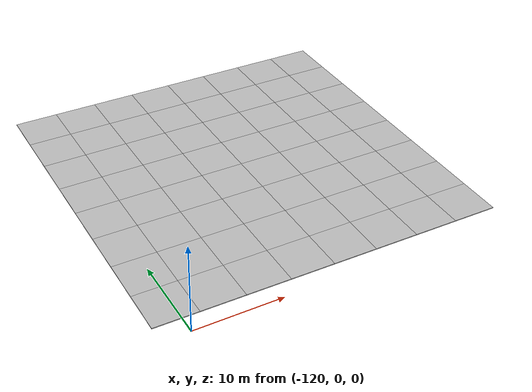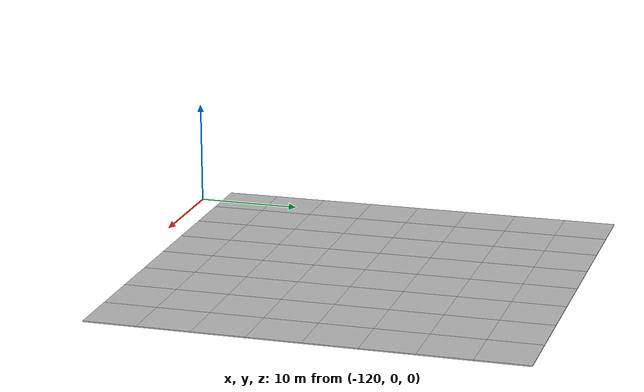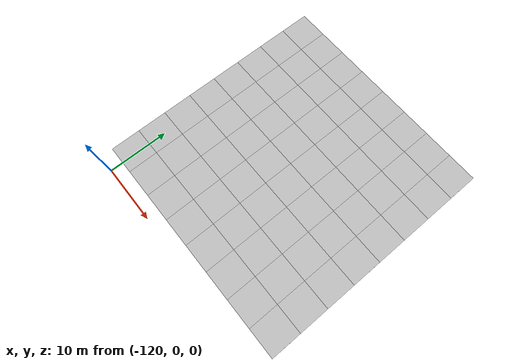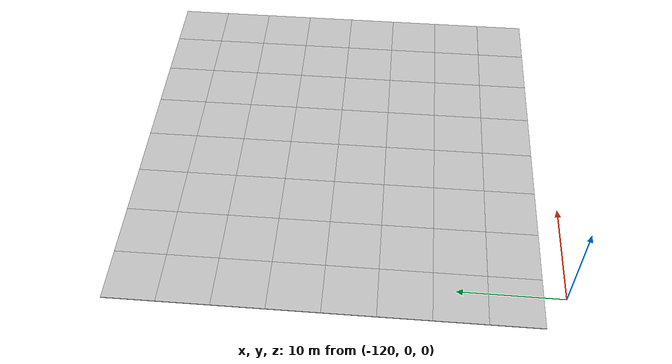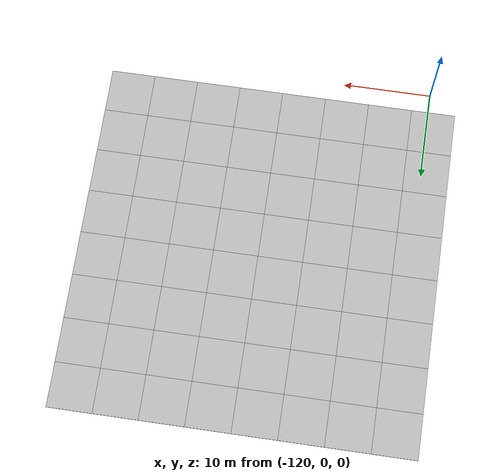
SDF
<sdf version="1.7">
 <world name="default">
  <model name="mud_plane_80x80_3">
   <model name="mud_plane_40x40_0">
    <model name="mud_plane_20x20">
     <model name="mud_plane">
      <static>1</static>
      <link name="link">
       <collision name="collision"><geometry><box><size>10 10 0.1</size></box></geometry></collision>
       <visual name="visual_1">
        <pose>-2.5 2.5 -0.05 0 -0 0</pose>
        <cast_shadows>0</cast_shadows>
        <geometry><box><size>5 5 0.1</size></box></geometry>
        <material>
         <script>
          <uri>model://mud_plane/materials/scripts</uri>
          <uri>model://mud_plane/materials/textures</uri>
          <name>vrc/mud</name>
         </script>
        </material>
       </visual>
       <visual name="visual_2">
        <pose>2.5 2.5 -0.05 0 -0 0</pose>
        <cast_shadows>0</cast_shadows>
        <geometry><box><size>5 5 0.1</size></box></geometry>
        <material>
         <script>
          <uri>model://mud_plane/materials/scripts</uri>
          <uri>model://mud_plane/materials/textures</uri>
          <name>vrc/mud</name>
         </script>
        </material>
       </visual>
       <visual name="visual_3">
        <pose>2.5 -2.5 -0.05 0 -0 0</pose>
        <cast_shadows>0</cast_shadows>
        <geometry><box><size>5 5 0.1</size></box></geometry>
        <material>
         <script>
          <uri>model://mud_plane/materials/scripts</uri>
          <uri>model://mud_plane/materials/textures</uri>
          <name>vrc/mud</name>
         </script>
        </material>
       </visual>
       <visual name="visual_4">
        <pose>-2.5 -2.5 -0.05 0 -0 0</pose>
        <cast_shadows>0</cast_shadows>
        <geometry><box><size>5 5 0.1</size></box></geometry>
        <material>
         <script>
          <uri>model://mud_plane/materials/scripts</uri>
          <uri>model://mud_plane/materials/textures</uri>
          <name>vrc/mud</name>
         </script>
        </material>
       </visual>
      </link>
      <pose>-4.99986 -4.99991 0 0 -0 0</pose>
     </model>
     <model name="mud_plane_0">
      <static>1</static>
      <link name="link">
       <collision name="collision"><geometry><box><size>10 10 0.1</size></box></geometry></collision>
       <visual name="visual_1">
        <pose>-2.5 2.5 -0.05 0 -0 0</pose>
        <cast_shadows>0</cast_shadows>
        <geometry><box><size>5 5 0.1</size></box></geometry>
        <material>
         <script>
          <uri>model://mud_plane/materials/scripts</uri>
          <uri>model://mud_plane/materials/textures</uri>
          <name>vrc/mud</name>
         </script>
        </material>
       </visual>
       <visual name="visual_2">
        <pose>2.5 2.5 -0.05 0 -0 0</pose>
        <cast_shadows>0</cast_shadows>
        <geometry><box><size>5 5 0.1</size></box></geometry>
        <material>
         <script>
          <uri>model://mud_plane/materials/scripts</uri>
          <uri>model://mud_plane/materials/textures</uri>
          <name>vrc/mud</name>
         </script>
        </material>
       </visual>
       <visual name="visual_3">
        <pose>2.5 -2.5 -0.05 0 -0 0</pose>
        <cast_shadows>0</cast_shadows>
        <geometry><box><size>5 5 0.1</size></box></geometry>
        <material>
         <script>
          <uri>model://mud_plane/materials/scripts</uri>
          <uri>model://mud_plane/materials/textures</uri>
          <name>vrc/mud</name>
         </script>
        </material>
       </visual>
       <visual name="visual_4">
        <pose>-2.5 -2.5 -0.05 0 -0 0</pose>
        <cast_shadows>0</cast_shadows>
        <geometry><box><size>5 5 0.1</size></box></geometry>
        <material>
         <script>
          <uri>model://mud_plane/materials/scripts</uri>
          <uri>model://mud_plane/materials/textures</uri>
          <name>vrc/mud</name>
         </script>
        </material>
       </visual>
      </link>
      <pose>-4.99946 4.99954 0 0 -0 0</pose>
     </model>
     <model name="mud_plane_1">
      <static>1</static>
      <link name="link">
       <collision name="collision"><geometry><box><size>10 10 0.1</size></box></geometry></collision>
       <visual name="visual_1">
        <pose>-2.5 2.5 -0.05 0 -0 0</pose>
        <cast_shadows>0</cast_shadows>
        <geometry><box><size>5 5 0.1</size></box></geometry>
        <material>
         <script>
          <uri>model://mud_plane/materials/scripts</uri>
          <uri>model://mud_plane/materials/textures</uri>
          <name>vrc/mud</name>
         </script>
        </material>
       </visual>
       <visual name="visual_2">
        <pose>2.5 2.5 -0.05 0 -0 0</pose>
        <cast_shadows>0</cast_shadows>
        <geometry><box><size>5 5 0.1</size></box></geometry>
        <material>
         <script>
          <uri>model://mud_plane/materials/scripts</uri>
          <uri>model://mud_plane/materials/textures</uri>
          <name>vrc/mud</name>
         </script>
        </material>
       </visual>
       <visual name="visual_3">
        <pose>2.5 -2.5 -0.05 0 -0 0</pose>
        <cast_shadows>0</cast_shadows>
        <geometry><box><size>5 5 0.1</size></box></geometry>
        <material>
         <script>
          <uri>model://mud_plane/materials/scripts</uri>
          <uri>model://mud_plane/materials/textures</uri>
          <name>vrc/mud</name>
         </script>
        </material>
       </visual>
       <visual name="visual_4">
        <pose>-2.5 -2.5 -0.05 0 -0 0</pose>
        <cast_shadows>0</cast_shadows>
        <geometry><box><size>5 5 0.1</size></box></geometry>
        <material>
         <script>
          <uri>model://mud_plane/materials/scripts</uri>
          <uri>model://mud_plane/materials/textures</uri>
          <name>vrc/mud</name>
         </script>
        </material>
       </visual>
      </link>
      <pose>4.99964 -4.99949 0 0 -0 0</pose>
     </model>
     <model name="mud_plane_2">
      <static>1</static>
      <link name="link">
       <collision name="collision"><geometry><box><size>10 10 0.1</size></box></geometry></collision>
       <visual name="visual_1">
        <pose>-2.5 2.5 -0.05 0 -0 0</pose>
        <cast_shadows>0</cast_shadows>
        <geometry><box><size>5 5 0.1</size></box></geometry>
        <material>
         <script>
          <uri>model://mud_plane/materials/scripts</uri>
          <uri>model://mud_plane/materials/textures</uri>
          <name>vrc/mud</name>
         </script>
        </material>
       </visual>
       <visual name="visual_2">
        <pose>2.5 2.5 -0.05 0 -0 0</pose>
        <cast_shadows>0</cast_shadows>
        <geometry><box><size>5 5 0.1</size></box></geometry>
        <material>
         <script>
          <uri>model://mud_plane/materials/scripts</uri>
          <uri>model://mud_plane/materials/textures</uri>
          <name>vrc/mud</name>
         </script>
        </material>
       </visual>
       <visual name="visual_3">
        <pose>2.5 -2.5 -0.05 0 -0 0</pose>
        <cast_shadows>0</cast_shadows>
        <geometry><box><size>5 5 0.1</size></box></geometry>
        <material>
         <script>
          <uri>model://mud_plane/materials/scripts</uri>
          <uri>model://mud_plane/materials/textures</uri>
          <name>vrc/mud</name>
         </script>
        </material>
       </visual>
       <visual name="visual_4">
        <pose>-2.5 -2.5 -0.05 0 -0 0</pose>
        <cast_shadows>0</cast_shadows>
        <geometry><box><size>5 5 0.1</size></box></geometry>
        <material>
         <script>
          <uri>model://mud_plane/materials/scripts</uri>
          <uri>model://mud_plane/materials/textures</uri>
          <name>vrc/mud</name>
         </script>
        </material>
       </visual>
      </link>
      <pose>4.99967 4.99986 0 0 -0 0</pose>
     </model>
     <static>0</static>
     <pose>-9.99895 9.99843 0 0 -0 0</pose>
    </model>
    <model name="mud_plane_20x20_0">
     <model name="mud_plane">
      <static>1</static>
      <link name="link">
       <collision name="collision"><geometry><box><size>10 10 0.1</size></box></geometry></collision>
       <visual name="visual_1">
        <pose>-2.5 2.5 -0.05 0 -0 0</pose>
        <cast_shadows>0</cast_shadows>
        <geometry><box><size>5 5 0.1</size></box></geometry>
        <material>
         <script>
          <uri>model://mud_plane/materials/scripts</uri>
          <uri>model://mud_plane/materials/textures</uri>
          <name>vrc/mud</name>
         </script>
        </material>
       </visual>
       <visual name="visual_2">
        <pose>2.5 2.5 -0.05 0 -0 0</pose>
        <cast_shadows>0</cast_shadows>
        <geometry><box><size>5 5 0.1</size></box></geometry>
        <material>
         <script>
          <uri>model://mud_plane/materials/scripts</uri>
          <uri>model://mud_plane/materials/textures</uri>
          <name>vrc/mud</name>
         </script>
        </material>
       </visual>
       <visual name="visual_3">
        <pose>2.5 -2.5 -0.05 0 -0 0</pose>
        <cast_shadows>0</cast_shadows>
        <geometry><box><size>5 5 0.1</size></box></geometry>
        <material>
         <script>
          <uri>model://mud_plane/materials/scripts</uri>
          <uri>model://mud_plane/materials/textures</uri>
          <name>vrc/mud</name>
         </script>
        </material>
       </visual>
       <visual name="visual_4">
        <pose>-2.5 -2.5 -0.05 0 -0 0</pose>
        <cast_shadows>0</cast_shadows>
        <geometry><box><size>5 5 0.1</size></box></geometry>
        <material>
         <script>
          <uri>model://mud_plane/materials/scripts</uri>
          <uri>model://mud_plane/materials/textures</uri>
          <name>vrc/mud</name>
         </script>
        </material>
       </visual>
      </link>
      <pose>-4.99986 -4.99991 0 0 -0 0</pose>
     </model>
     <model name="mud_plane_0">
      <static>1</static>
      <link name="link">
       <collision name="collision"><geometry><box><size>10 10 0.1</size></box></geometry></collision>
       <visual name="visual_1">
        <pose>-2.5 2.5 -0.05 0 -0 0</pose>
        <cast_shadows>0</cast_shadows>
        <geometry><box><size>5 5 0.1</size></box></geometry>
        <material>
         <script>
          <uri>model://mud_plane/materials/scripts</uri>
          <uri>model://mud_plane/materials/textures</uri>
          <name>vrc/mud</name>
         </script>
        </material>
       </visual>
       <visual name="visual_2">
        <pose>2.5 2.5 -0.05 0 -0 0</pose>
        <cast_shadows>0</cast_shadows>
        <geometry><box><size>5 5 0.1</size></box></geometry>
        <material>
         <script>
          <uri>model://mud_plane/materials/scripts</uri>
          <uri>model://mud_plane/materials/textures</uri>
          <name>vrc/mud</name>
         </script>
        </material>
       </visual>
       <visual name="visual_3">
        <pose>2.5 -2.5 -0.05 0 -0 0</pose>
        <cast_shadows>0</cast_shadows>
        <geometry><box><size>5 5 0.1</size></box></geometry>
        <material>
         <script>
          <uri>model://mud_plane/materials/scripts</uri>
          <uri>model://mud_plane/materials/textures</uri>
          <name>vrc/mud</name>
         </script>
        </material>
       </visual>
       <visual name="visual_4">
        <pose>-2.5 -2.5 -0.05 0 -0 0</pose>
        <cast_shadows>0</cast_shadows>
        <geometry><box><size>5 5 0.1</size></box></geometry>
        <material>
         <script>
          <uri>model://mud_plane/materials/scripts</uri>
          <uri>model://mud_plane/materials/textures</uri>
          <name>vrc/mud</name>
         </script>
        </material>
       </visual>
      </link>
      <pose>-4.99946 4.99954 0 0 -0 0</pose>
     </model>
     <model name="mud_plane_1">
      <static>1</static>
      <link name="link">
       <collision name="collision"><geometry><box><size>10 10 0.1</size></box></geometry></collision>
       <visual name="visual_1">
        <pose>-2.5 2.5 -0.05 0 -0 0</pose>
        <cast_shadows>0</cast_shadows>
        <geometry><box><size>5 5 0.1</size></box></geometry>
        <material>
         <script>
          <uri>model://mud_plane/materials/scripts</uri>
          <uri>model://mud_plane/materials/textures</uri>
          <name>vrc/mud</name>
         </script>
        </material>
       </visual>
       <visual name="visual_2">
        <pose>2.5 2.5 -0.05 0 -0 0</pose>
        <cast_shadows>0</cast_shadows>
        <geometry><box><size>5 5 0.1</size></box></geometry>
        <material>
         <script>
          <uri>model://mud_plane/materials/scripts</uri>
          <uri>model://mud_plane/materials/textures</uri>
          <name>vrc/mud</name>
         </script>
        </material>
       </visual>
       <visual name="visual_3">
        <pose>2.5 -2.5 -0.05 0 -0 0</pose>
        <cast_shadows>0</cast_shadows>
        <geometry><box><size>5 5 0.1</size></box></geometry>
        <material>
         <script>
          <uri>model://mud_plane/materials/scripts</uri>
          <uri>model://mud_plane/materials/textures</uri>
          <name>vrc/mud</name>
         </script>
        </material>
       </visual>
       <visual name="visual_4">
        <pose>-2.5 -2.5 -0.05 0 -0 0</pose>
        <cast_shadows>0</cast_shadows>
        <geometry><box><size>5 5 0.1</size></box></geometry>
        <material>
         <script>
          <uri>model://mud_plane/materials/scripts</uri>
          <uri>model://mud_plane/materials/textures</uri>
          <name>vrc/mud</name>
         </script>
        </material>
       </visual>
      </link>
      <pose>4.99964 -4.99949 0 0 -0 0</pose>
     </model>
     <model name="mud_plane_2">
      <static>1</static>
      <link name="link">
       <collision name="collision"><geometry><box><size>10 10 0.1</size></box></geometry></collision>
       <visual name="visual_1">
        <pose>-2.5 2.5 -0.05 0 -0 0</pose>
        <cast_shadows>0</cast_shadows>
        <geometry><box><size>5 5 0.1</size></box></geometry>
        <material>
         <script>
          <uri>model://mud_plane/materials/scripts</uri>
          <uri>model://mud_plane/materials/textures</uri>
          <name>vrc/mud</name>
         </script>
        </material>
       </visual>
       <visual name="visual_2">
        <pose>2.5 2.5 -0.05 0 -0 0</pose>
        <cast_shadows>0</cast_shadows>
        <geometry><box><size>5 5 0.1</size></box></geometry>
        <material>
         <script>
          <uri>model://mud_plane/materials/scripts</uri>
          <uri>model://mud_plane/materials/textures</uri>
          <name>vrc/mud</name>
         </script>
        </material>
       </visual>
       <visual name="visual_3">
        <pose>2.5 -2.5 -0.05 0 -0 0</pose>
        <cast_shadows>0</cast_shadows>
        <geometry><box><size>5 5 0.1</size></box></geometry>
        <material>
         <script>
          <uri>model://mud_plane/materials/scripts</uri>
          <uri>model://mud_plane/materials/textures</uri>
          <name>vrc/mud</name>
         </script>
        </material>
       </visual>
       <visual name="visual_4">
        <pose>-2.5 -2.5 -0.05 0 -0 0</pose>
        <cast_shadows>0</cast_shadows>
        <geometry><box><size>5 5 0.1</size></box></geometry>
        <material>
         <script>
          <uri>model://mud_plane/materials/scripts</uri>
          <uri>model://mud_plane/materials/textures</uri>
          <name>vrc/mud</name>
         </script>
        </material>
       </visual>
      </link>
      <pose>4.99967 4.99986 0 0 -0 0</pose>
     </model>
     <static>0</static>
     <pose>9.99933 9.9997 0 0 -0 0</pose>
    </model>
    <model name="mud_plane_20x20_1">
     <model name="mud_plane">
      <static>1</static>
      <link name="link">
       <collision name="collision"><geometry><box><size>10 10 0.1</size></box></geometry></collision>
       <visual name="visual_1">
        <pose>-2.5 2.5 -0.05 0 -0 0</pose>
        <cast_shadows>0</cast_shadows>
        <geometry><box><size>5 5 0.1</size></box></geometry>
        <material>
         <script>
          <uri>model://mud_plane/materials/scripts</uri>
          <uri>model://mud_plane/materials/textures</uri>
          <name>vrc/mud</name>
         </script>
        </material>
       </visual>
       <visual name="visual_2">
        <pose>2.5 2.5 -0.05 0 -0 0</pose>
        <cast_shadows>0</cast_shadows>
        <geometry><box><size>5 5 0.1</size></box></geometry>
        <material>
         <script>
          <uri>model://mud_plane/materials/scripts</uri>
          <uri>model://mud_plane/materials/textures</uri>
          <name>vrc/mud</name>
         </script>
        </material>
       </visual>
       <visual name="visual_3">
        <pose>2.5 -2.5 -0.05 0 -0 0</pose>
        <cast_shadows>0</cast_shadows>
        <geometry><box><size>5 5 0.1</size></box></geometry>
        <material>
         <script>
          <uri>model://mud_plane/materials/scripts</uri>
          <uri>model://mud_plane/materials/textures</uri>
          <name>vrc/mud</name>
         </script>
        </material>
       </visual>
       <visual name="visual_4">
        <pose>-2.5 -2.5 -0.05 0 -0 0</pose>
        <cast_shadows>0</cast_shadows>
        <geometry><box><size>5 5 0.1</size></box></geometry>
        <material>
         <script>
          <uri>model://mud_plane/materials/scripts</uri>
          <uri>model://mud_plane/materials/textures</uri>
          <name>vrc/mud</name>
         </script>
        </material>
       </visual>
      </link>
      <pose>-4.99986 -4.99991 0 0 -0 0</pose>
     </model>
     <model name="mud_plane_0">
      <static>1</static>
      <link name="link">
       <collision name="collision"><geometry><box><size>10 10 0.1</size></box></geometry></collision>
       <visual name="visual_1">
        <pose>-2.5 2.5 -0.05 0 -0 0</pose>
        <cast_shadows>0</cast_shadows>
        <geometry><box><size>5 5 0.1</size></box></geometry>
        <material>
         <script>
          <uri>model://mud_plane/materials/scripts</uri>
          <uri>model://mud_plane/materials/textures</uri>
          <name>vrc/mud</name>
         </script>
        </material>
       </visual>
       <visual name="visual_2">
        <pose>2.5 2.5 -0.05 0 -0 0</pose>
        <cast_shadows>0</cast_shadows>
        <geometry><box><size>5 5 0.1</size></box></geometry>
        <material>
         <script>
          <uri>model://mud_plane/materials/scripts</uri>
          <uri>model://mud_plane/materials/textures</uri>
          <name>vrc/mud</name>
         </script>
        </material>
       </visual>
       <visual name="visual_3">
        <pose>2.5 -2.5 -0.05 0 -0 0</pose>
        <cast_shadows>0</cast_shadows>
        <geometry><box><size>5 5 0.1</size></box></geometry>
        <material>
         <script>
          <uri>model://mud_plane/materials/scripts</uri>
          <uri>model://mud_plane/materials/textures</uri>
          <name>vrc/mud</name>
         </script>
        </material>
       </visual>
       <visual name="visual_4">
        <pose>-2.5 -2.5 -0.05 0 -0 0</pose>
        <cast_shadows>0</cast_shadows>
        <geometry><box><size>5 5 0.1</size></box></geometry>
        <material>
         <script>
          <uri>model://mud_plane/materials/scripts</uri>
          <uri>model://mud_plane/materials/textures</uri>
          <name>vrc/mud</name>
         </script>
        </material>
       </visual>
      </link>
      <pose>-4.99946 4.99954 0 0 -0 0</pose>
     </model>
     <model name="mud_plane_1">
      <static>1</static>
      <link name="link">
       <collision name="collision"><geometry><box><size>10 10 0.1</size></box></geometry></collision>
       <visual name="visual_1">
        <pose>-2.5 2.5 -0.05 0 -0 0</pose>
        <cast_shadows>0</cast_shadows>
        <geometry><box><size>5 5 0.1</size></box></geometry>
        <material>
         <script>
          <uri>model://mud_plane/materials/scripts</uri>
          <uri>model://mud_plane/materials/textures</uri>
          <name>vrc/mud</name>
         </script>
        </material>
       </visual>
       <visual name="visual_2">
        <pose>2.5 2.5 -0.05 0 -0 0</pose>
        <cast_shadows>0</cast_shadows>
        <geometry><box><size>5 5 0.1</size></box></geometry>
        <material>
         <script>
          <uri>model://mud_plane/materials/scripts</uri>
          <uri>model://mud_plane/materials/textures</uri>
          <name>vrc/mud</name>
         </script>
        </material>
       </visual>
       <visual name="visual_3">
        <pose>2.5 -2.5 -0.05 0 -0 0</pose>
        <cast_shadows>0</cast_shadows>
        <geometry><box><size>5 5 0.1</size></box></geometry>
        <material>
         <script>
          <uri>model://mud_plane/materials/scripts</uri>
          <uri>model://mud_plane/materials/textures</uri>
          <name>vrc/mud</name>
         </script>
        </material>
       </visual>
       <visual name="visual_4">
        <pose>-2.5 -2.5 -0.05 0 -0 0</pose>
        <cast_shadows>0</cast_shadows>
        <geometry><box><size>5 5 0.1</size></box></geometry>
        <material>
         <script>
          <uri>model://mud_plane/materials/scripts</uri>
          <uri>model://mud_plane/materials/textures</uri>
          <name>vrc/mud</name>
         </script>
        </material>
       </visual>
      </link>
      <pose>4.99964 -4.99949 0 0 -0 0</pose>
     </model>
     <model name="mud_plane_2">
      <static>1</static>
      <link name="link">
       <collision name="collision"><geometry><box><size>10 10 0.1</size></box></geometry></collision>
       <visual name="visual_1">
        <pose>-2.5 2.5 -0.05 0 -0 0</pose>
        <cast_shadows>0</cast_shadows>
        <geometry><box><size>5 5 0.1</size></box></geometry>
        <material>
         <script>
          <uri>model://mud_plane/materials/scripts</uri>
          <uri>model://mud_plane/materials/textures</uri>
          <name>vrc/mud</name>
         </script>
        </material>
       </visual>
       <visual name="visual_2">
        <pose>2.5 2.5 -0.05 0 -0 0</pose>
        <cast_shadows>0</cast_shadows>
        <geometry><box><size>5 5 0.1</size></box></geometry>
        <material>
         <script>
          <uri>model://mud_plane/materials/scripts</uri>
          <uri>model://mud_plane/materials/textures</uri>
          <name>vrc/mud</name>
         </script>
        </material>
       </visual>
       <visual name="visual_3">
        <pose>2.5 -2.5 -0.05 0 -0 0</pose>
        <cast_shadows>0</cast_shadows>
        <geometry><box><size>5 5 0.1</size></box></geometry>
        <material>
         <script>
          <uri>model://mud_plane/materials/scripts</uri>
          <uri>model://mud_plane/materials/textures</uri>
          <name>vrc/mud</name>
         </script>
        </material>
       </visual>
       <visual name="visual_4">
        <pose>-2.5 -2.5 -0.05 0 -0 0</pose>
        <cast_shadows>0</cast_shadows>
        <geometry><box><size>5 5 0.1</size></box></geometry>
        <material>
         <script>
          <uri>model://mud_plane/materials/scripts</uri>
          <uri>model://mud_plane/materials/textures</uri>
          <name>vrc/mud</name>
         </script>
        </material>
       </visual>
      </link>
      <pose>4.99967 4.99986 0 0 -0 0</pose>
     </model>
     <static>0</static>
     <pose>9.9993 -9.99877 0 0 -0 0</pose>
    </model>
    <model name="mud_plane_20x20_2">
     <model name="mud_plane">
      <static>1</static>
      <link name="link">
       <collision name="collision"><geometry><box><size>10 10 0.1</size></box></geometry></collision>
       <visual name="visual_1">
        <pose>-2.5 2.5 -0.05 0 -0 0</pose>
        <cast_shadows>0</cast_shadows>
        <geometry><box><size>5 5 0.1</size></box></geometry>
        <material>
         <script>
          <uri>model://mud_plane/materials/scripts</uri>
          <uri>model://mud_plane/materials/textures</uri>
          <name>vrc/mud</name>
         </script>
        </material>
       </visual>
       <visual name="visual_2">
        <pose>2.5 2.5 -0.05 0 -0 0</pose>
        <cast_shadows>0</cast_shadows>
        <geometry><box><size>5 5 0.1</size></box></geometry>
        <material>
         <script>
          <uri>model://mud_plane/materials/scripts</uri>
          <uri>model://mud_plane/materials/textures</uri>
          <name>vrc/mud</name>
         </script>
        </material>
       </visual>
       <visual name="visual_3">
        <pose>2.5 -2.5 -0.05 0 -0 0</pose>
        <cast_shadows>0</cast_shadows>
        <geometry><box><size>5 5 0.1</size></box></geometry>
        <material>
         <script>
          <uri>model://mud_plane/materials/scripts</uri>
          <uri>model://mud_plane/materials/textures</uri>
          <name>vrc/mud</name>
         </script>
        </material>
       </visual>
       <visual name="visual_4">
        <pose>-2.5 -2.5 -0.05 0 -0 0</pose>
        <cast_shadows>0</cast_shadows>
        <geometry><box><size>5 5 0.1</size></box></geometry>
        <material>
         <script>
          <uri>model://mud_plane/materials/scripts</uri>
          <uri>model://mud_plane/materials/textures</uri>
          <name>vrc/mud</name>
         </script>
        </material>
       </visual>
      </link>
      <pose>-4.99986 -4.99991 0 0 -0 0</pose>
     </model>
     <model name="mud_plane_0">
      <static>1</static>
      <link name="link">
       <collision name="collision"><geometry><box><size>10 10 0.1</size></box></geometry></collision>
       <visual name="visual_1">
        <pose>-2.5 2.5 -0.05 0 -0 0</pose>
        <cast_shadows>0</cast_shadows>
        <geometry><box><size>5 5 0.1</size></box></geometry>
        <material>
         <script>
          <uri>model://mud_plane/materials/scripts</uri>
          <uri>model://mud_plane/materials/textures</uri>
          <name>vrc/mud</name>
         </script>
        </material>
       </visual>
       <visual name="visual_2">
        <pose>2.5 2.5 -0.05 0 -0 0</pose>
        <cast_shadows>0</cast_shadows>
        <geometry><box><size>5 5 0.1</size></box></geometry>
        <material>
         <script>
          <uri>model://mud_plane/materials/scripts</uri>
          <uri>model://mud_plane/materials/textures</uri>
          <name>vrc/mud</name>
         </script>
        </material>
       </visual>
       <visual name="visual_3">
        <pose>2.5 -2.5 -0.05 0 -0 0</pose>
        <cast_shadows>0</cast_shadows>
        <geometry><box><size>5 5 0.1</size></box></geometry>
        <material>
         <script>
          <uri>model://mud_plane/materials/scripts</uri>
          <uri>model://mud_plane/materials/textures</uri>
          <name>vrc/mud</name>
         </script>
        </material>
       </visual>
       <visual name="visual_4">
        <pose>-2.5 -2.5 -0.05 0 -0 0</pose>
        <cast_shadows>0</cast_shadows>
        <geometry><box><size>5 5 0.1</size></box></geometry>
        <material>
         <script>
          <uri>model://mud_plane/materials/scripts</uri>
          <uri>model://mud_plane/materials/textures</uri>
          <name>vrc/mud</name>
         </script>
        </material>
       </visual>
      </link>
      <pose>-4.99946 4.99954 0 0 -0 0</pose>
     </model>
     <model name="mud_plane_1">
      <static>1</static>
      <link name="link">
       <collision name="collision"><geometry><box><size>10 10 0.1</size></box></geometry></collision>
       <visual name="visual_1">
        <pose>-2.5 2.5 -0.05 0 -0 0</pose>
        <cast_shadows>0</cast_shadows>
        <geometry><box><size>5 5 0.1</size></box></geometry>
        <material>
         <script>
          <uri>model://mud_plane/materials/scripts</uri>
          <uri>model://mud_plane/materials/textures</uri>
          <name>vrc/mud</name>
         </script>
        </material>
       </visual>
       <visual name="visual_2">
        <pose>2.5 2.5 -0.05 0 -0 0</pose>
        <cast_shadows>0</cast_shadows>
        <geometry><box><size>5 5 0.1</size></box></geometry>
        <material>
         <script>
          <uri>model://mud_plane/materials/scripts</uri>
          <uri>model://mud_plane/materials/textures</uri>
          <name>vrc/mud</name>
         </script>
        </material>
       </visual>
       <visual name="visual_3">
        <pose>2.5 -2.5 -0.05 0 -0 0</pose>
        <cast_shadows>0</cast_shadows>
        <geometry><box><size>5 5 0.1</size></box></geometry>
        <material>
         <script>
          <uri>model://mud_plane/materials/scripts</uri>
          <uri>model://mud_plane/materials/textures</uri>
          <name>vrc/mud</name>
         </script>
        </material>
       </visual>
       <visual name="visual_4">
        <pose>-2.5 -2.5 -0.05 0 -0 0</pose>
        <cast_shadows>0</cast_shadows>
        <geometry><box><size>5 5 0.1</size></box></geometry>
        <material>
         <script>
          <uri>model://mud_plane/materials/scripts</uri>
          <uri>model://mud_plane/materials/textures</uri>
          <name>vrc/mud</name>
         </script>
        </material>
       </visual>
      </link>
      <pose>4.99964 -4.99949 0 0 -0 0</pose>
     </model>
     <model name="mud_plane_2">
      <static>1</static>
      <link name="link">
       <collision name="collision"><geometry><box><size>10 10 0.1</size></box></geometry></collision>
       <visual name="visual_1">
        <pose>-2.5 2.5 -0.05 0 -0 0</pose>
        <cast_shadows>0</cast_shadows>
        <geometry><box><size>5 5 0.1</size></box></geometry>
        <material>
         <script>
          <uri>model://mud_plane/materials/scripts</uri>
          <uri>model://mud_plane/materials/textures</uri>
          <name>vrc/mud</name>
         </script>
        </material>
       </visual>
       <visual name="visual_2">
        <pose>2.5 2.5 -0.05 0 -0 0</pose>
        <cast_shadows>0</cast_shadows>
        <geometry><box><size>5 5 0.1</size></box></geometry>
        <material>
         <script>
          <uri>model://mud_plane/materials/scripts</uri>
          <uri>model://mud_plane/materials/textures</uri>
          <name>vrc/mud</name>
         </script>
        </material>
       </visual>
       <visual name="visual_3">
        <pose>2.5 -2.5 -0.05 0 -0 0</pose>
        <cast_shadows>0</cast_shadows>
        <geometry><box><size>5 5 0.1</size></box></geometry>
        <material>
         <script>
          <uri>model://mud_plane/materials/scripts</uri>
          <uri>model://mud_plane/materials/textures</uri>
          <name>vrc/mud</name>
         </script>
        </material>
       </visual>
       <visual name="visual_4">
        <pose>-2.5 -2.5 -0.05 0 -0 0</pose>
        <cast_shadows>0</cast_shadows>
        <geometry><box><size>5 5 0.1</size></box></geometry>
        <material>
         <script>
          <uri>model://mud_plane/materials/scripts</uri>
          <uri>model://mud_plane/materials/textures</uri>
          <name>vrc/mud</name>
         </script>
        </material>
       </visual>
      </link>
      <pose>4.99967 4.99986 0 0 -0 0</pose>
     </model>
     <static>0</static>
     <pose>-9.99969 -9.99935 0 0 -0 0</pose>
    </model>
    <static>0</static>
    <pose>19.9985 -19.998 0 0 -0 0</pose>
   </model>
   <static>0</static>
   <pose>-123.082 42.0534 0 0 -0 0</pose>
  </model>
 </world>
</sdf>
